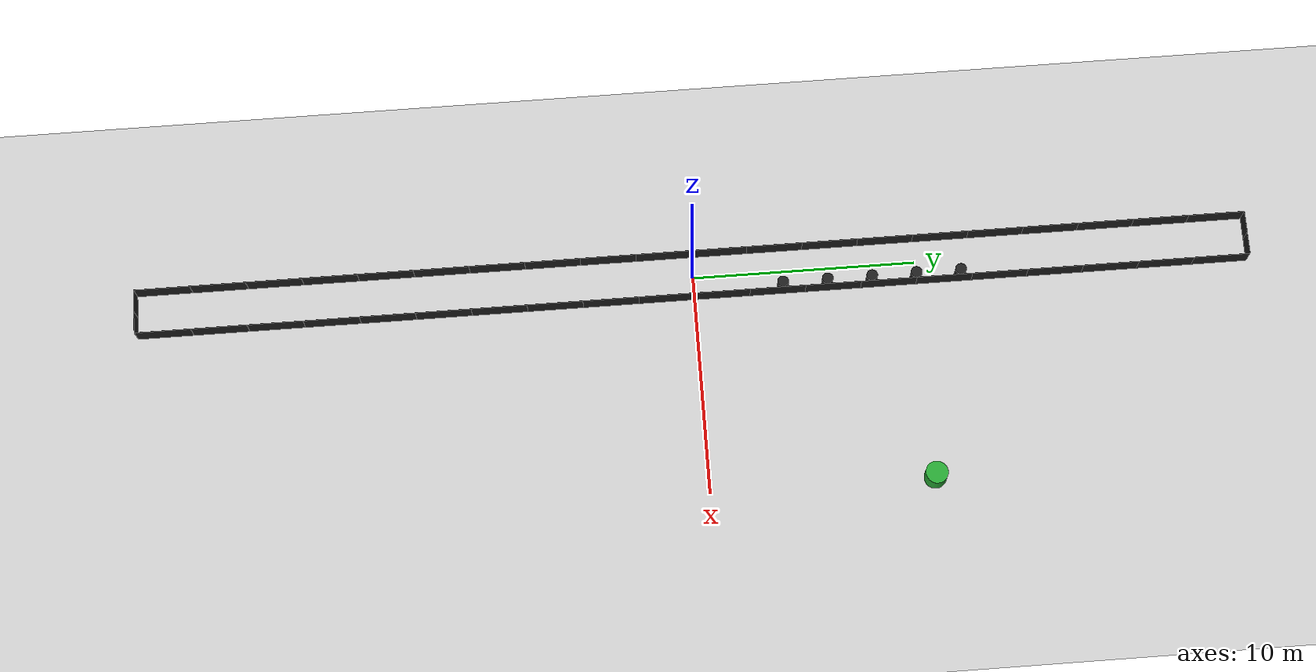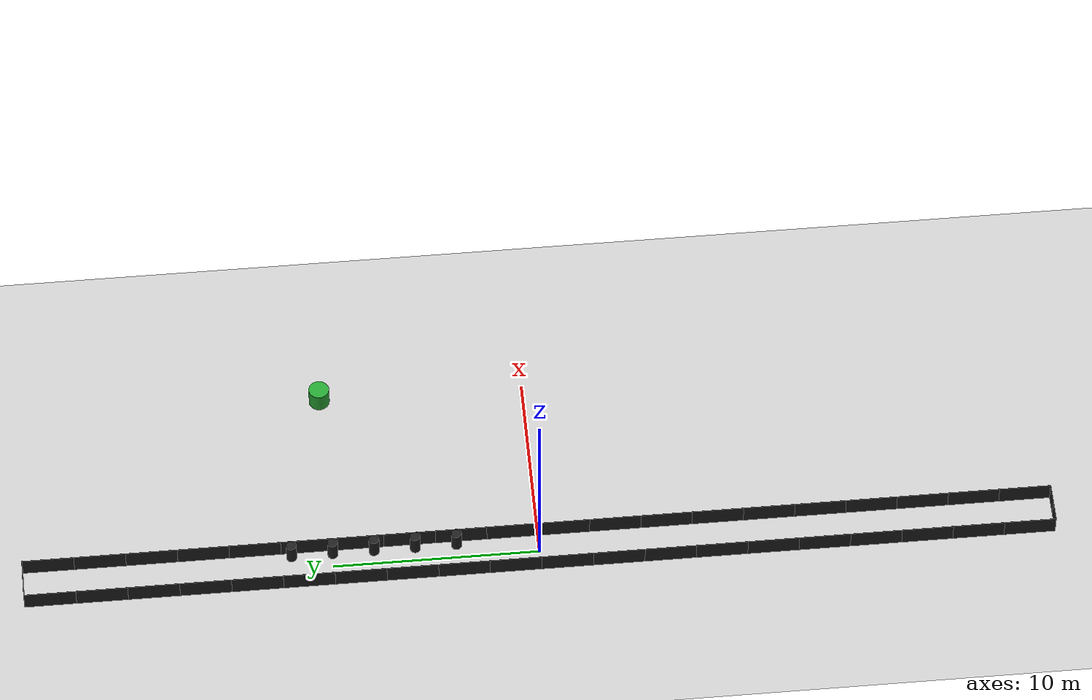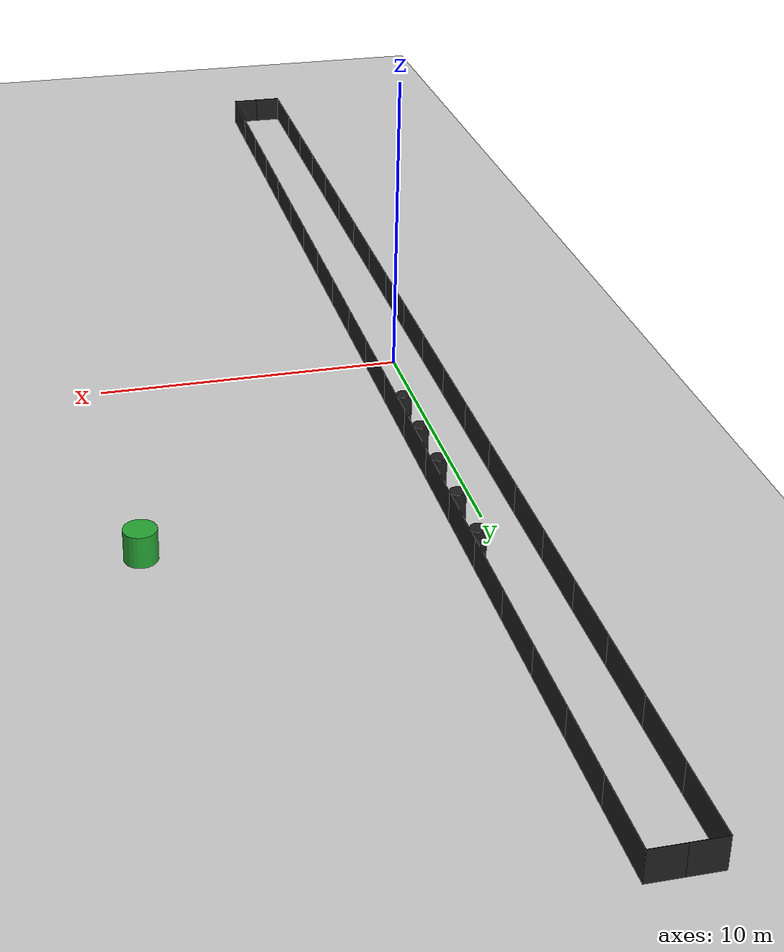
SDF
<?xml version="1.0" ?>
<sdf version="1.4">
  <world name="default">
    <!-- A global light source -->
    <include>
      <uri>model://sun</uri>
    </include>
    <!-- A ground plane -->
    <include>
      <uri>model://ground_plane</uri>
    </include>
    <!-- Own physics settings to speed up simulation -->
    <physics type='ode'>
      <max_step_size>0.01</max_step_size>
      <gravity>0 0 -9.8</gravity>
    </physics>

    <model name='obs11'>
			<pose>-1 1.25 0.5 0 -0 0</pose>
			<link name='link'>
				<inertial>
					<mass>1.0</mass>
				</inertial>
				<collision name='collision'>
					<geometry>
						<box>
							<size>0.01 2.5 1</size>
						</box>
					</geometry>
				</collision>
				<visual name='visual'>
					<geometry>
						<box>
							<size>0.01 2.5 1</size>
						</box>
					</geometry>
					<material>
						<script>
							<uri>file://media/materials/scripts/gazebo.material</uri>
							<name>Gazebo/Black</name>
						</script>
					</material>
				</visual>
				<velocity_decay>
					<linear>0</linear>
					<angular>0</angular>
				</velocity_decay>
				<self_collide>0</self_collide>
				<kinematic>0</kinematic>
				<gravity>1</gravity>
			</link>
			<static>1</static>
		</model>

    <model name='obs12'>
			<pose>1 1.25 0.5 0 -0 0</pose>
			<link name='link'>
				<inertial>
					<mass>1.0</mass>
				</inertial>
				<collision name='collision'>
					<geometry>
						<box>
							<size>0.01 2.5 1</size>
						</box>
					</geometry>
				</collision>
				<visual name='visual'>
					<geometry>
						<box>
							<size>0.01 2.5 1</size>
						</box>
					</geometry>
					<material>
						<script>
							<uri>file://media/materials/scripts/gazebo.material</uri>
							<name>Gazebo/Black</name>
						</script>
					</material>
				</visual>
				<velocity_decay>
					<linear>0</linear>
					<angular>0</angular>
				</velocity_decay>
				<self_collide>0</self_collide>
				<kinematic>0</kinematic>
				<gravity>1</gravity>
			</link>
			<static>1</static>
		</model>

    <model name='obs21'>
			<pose>-1 3.75 0.5 0 -0 0</pose>
			<link name='link'>
				<inertial>
					<mass>1.0</mass>
				</inertial>
				<collision name='collision'>
					<geometry>
						<box>
							<size>0.01 2.5 1</size>
						</box>
					</geometry>
				</collision>
				<visual name='visual'>
					<geometry>
						<box>
							<size>0.01 2.5 1</size>
						</box>
					</geometry>
					<material>
						<script>
							<uri>file://media/materials/scripts/gazebo.material</uri>
							<name>Gazebo/Black</name>
						</script>
					</material>
				</visual>
				<velocity_decay>
					<linear>0</linear>
					<angular>0</angular>
				</velocity_decay>
				<self_collide>0</self_collide>
				<kinematic>0</kinematic>
				<gravity>1</gravity>
			</link>
			<static>1</static>
		</model>

    <model name='obs22'>
			<pose>1 3.75 0.5 0 -0 0</pose>
			<link name='link'>
				<inertial>
					<mass>1.0</mass>
				</inertial>
				<collision name='collision'>
					<geometry>
						<box>
							<size>0.01 2.5 1</size>
						</box>
					</geometry>
				</collision>
				<visual name='visual'>
					<geometry>
						<box>
							<size>0.01 2.5 1</size>
						</box>
					</geometry>
					<material>
						<script>
							<uri>file://media/materials/scripts/gazebo.material</uri>
							<name>Gazebo/Black</name>
						</script>
					</material>
				</visual>
				<velocity_decay>
					<linear>0</linear>
					<angular>0</angular>
				</velocity_decay>
				<self_collide>0</self_collide>
				<kinematic>0</kinematic>
				<gravity>1</gravity>
			</link>
			<static>1</static>
		</model>

    <model name='obs31'>
			<pose>-1 6.25 0.5 0 -0 0</pose>
			<link name='link'>
				<inertial>
					<mass>1.0</mass>
				</inertial>
				<collision name='collision'>
					<geometry>
						<box>
							<size>0.01 2.5 1</size>
						</box>
					</geometry>
				</collision>
				<visual name='visual'>
					<geometry>
						<box>
							<size>0.01 2.5 1</size>
						</box>
					</geometry>
					<material>
						<script>
							<uri>file://media/materials/scripts/gazebo.material</uri>
							<name>Gazebo/Black</name>
						</script>
					</material>
				</visual>
				<velocity_decay>
					<linear>0</linear>
					<angular>0</angular>
				</velocity_decay>
				<self_collide>0</self_collide>
				<kinematic>0</kinematic>
				<gravity>1</gravity>
			</link>
			<static>1</static>
		</model>

    <model name='obs32'>
			<pose>1 6.25 0.5 0 -0 0</pose>
			<link name='link'>
				<inertial>
					<mass>1.0</mass>
				</inertial>
				<collision name='collision'>
					<geometry>
						<box>
							<size>0.01 2.5 1</size>
						</box>
					</geometry>
				</collision>
				<visual name='visual'>
					<geometry>
						<box>
							<size>0.01 2.5 1</size>
						</box>
					</geometry>
					<material>
						<script>
							<uri>file://media/materials/scripts/gazebo.material</uri>
							<name>Gazebo/Black</name>
						</script>
					</material>
				</visual>
				<velocity_decay>
					<linear>0</linear>
					<angular>0</angular>
				</velocity_decay>
				<self_collide>0</self_collide>
				<kinematic>0</kinematic>
				<gravity>1</gravity>
			</link>
			<static>1</static>
		</model>

    <model name='obs41'>
			<pose>-1 8.75 0.5 0 -0 0</pose>
			<link name='link'>
				<inertial>
					<mass>1.0</mass>
				</inertial>
				<collision name='collision'>
					<geometry>
						<box>
							<size>0.01 2.5 1</size>
						</box>
					</geometry>
				</collision>
				<visual name='visual'>
					<geometry>
						<box>
							<size>0.01 2.5 1</size>
						</box>
					</geometry>
					<material>
						<script>
							<uri>file://media/materials/scripts/gazebo.material</uri>
							<name>Gazebo/Black</name>
						</script>
					</material>
				</visual>
				<velocity_decay>
					<linear>0</linear>
					<angular>0</angular>
				</velocity_decay>
				<self_collide>0</self_collide>
				<kinematic>0</kinematic>
				<gravity>1</gravity>
			</link>
			<static>1</static>
		</model>

    <model name='obs42'>
			<pose>1 8.75 0.5 0 -0 0</pose>
			<link name='link'>
				<inertial>
					<mass>1.0</mass>
				</inertial>
				<collision name='collision'>
					<geometry>
						<box>
							<size>0.01 2.5 1</size>
						</box>
					</geometry>
				</collision>
				<visual name='visual'>
					<geometry>
						<box>
							<size>0.01 2.5 1</size>
						</box>
					</geometry>
					<material>
						<script>
							<uri>file://media/materials/scripts/gazebo.material</uri>
							<name>Gazebo/Black</name>
						</script>
					</material>
				</visual>
				<velocity_decay>
					<linear>0</linear>
					<angular>0</angular>
				</velocity_decay>
				<self_collide>0</self_collide>
				<kinematic>0</kinematic>
				<gravity>1</gravity>
			</link>
			<static>1</static>
		</model>

    <model name='obs51'>
			<pose>-1 11.25 0.5 0 -0 0</pose>
			<link name='link'>
				<inertial>
					<mass>1.0</mass>
				</inertial>
				<collision name='collision'>
					<geometry>
						<box>
							<size>0.01 2.5 1</size>
						</box>
					</geometry>
				</collision>
				<visual name='visual'>
					<geometry>
						<box>
							<size>0.01 2.5 1</size>
						</box>
					</geometry>
					<material>
						<script>
							<uri>file://media/materials/scripts/gazebo.material</uri>
							<name>Gazebo/Black</name>
						</script>
					</material>
				</visual>
				<velocity_decay>
					<linear>0</linear>
					<angular>0</angular>
				</velocity_decay>
				<self_collide>0</self_collide>
				<kinematic>0</kinematic>
				<gravity>1</gravity>
			</link>
			<static>1</static>
		</model>

    <model name='obs52'>
			<pose>1 11.25 0.5 0 -0 0</pose>
			<link name='link'>
				<inertial>
					<mass>1.0</mass>
				</inertial>
				<collision name='collision'>
					<geometry>
						<box>
							<size>0.01 2.5 1</size>
						</box>
					</geometry>
				</collision>
				<visual name='visual'>
					<geometry>
						<box>
							<size>0.01 2.5 1</size>
						</box>
					</geometry>
					<material>
						<script>
							<uri>file://media/materials/scripts/gazebo.material</uri>
							<name>Gazebo/Black</name>
						</script>
					</material>
				</visual>
				<velocity_decay>
					<linear>0</linear>
					<angular>0</angular>
				</velocity_decay>
				<self_collide>0</self_collide>
				<kinematic>0</kinematic>
				<gravity>1</gravity>
			</link>
			<static>1</static>
		</model>

    <model name='obs61'>
			<pose>-1 13.75 0.5 0 -0 0</pose>
			<link name='link'>
				<inertial>
					<mass>1.0</mass>
				</inertial>
				<collision name='collision'>
					<geometry>
						<box>
							<size>0.01 2.5 1</size>
						</box>
					</geometry>
				</collision>
				<visual name='visual'>
					<geometry>
						<box>
							<size>0.01 2.5 1</size>
						</box>
					</geometry>
					<material>
						<script>
							<uri>file://media/materials/scripts/gazebo.material</uri>
							<name>Gazebo/Black</name>
						</script>
					</material>
				</visual>
				<velocity_decay>
					<linear>0</linear>
					<angular>0</angular>
				</velocity_decay>
				<self_collide>0</self_collide>
				<kinematic>0</kinematic>
				<gravity>1</gravity>
			</link>
			<static>1</static>
		</model>

    <model name='obs62'>
			<pose>1 13.75 0.5 0 -0 0</pose>
			<link name='link'>
				<inertial>
					<mass>1.0</mass>
				</inertial>
				<collision name='collision'>
					<geometry>
						<box>
							<size>0.01 2.5 1</size>
						</box>
					</geometry>
				</collision>
				<visual name='visual'>
					<geometry>
						<box>
							<size>0.01 2.5 1</size>
						</box>
					</geometry>
					<material>
						<script>
							<uri>file://media/materials/scripts/gazebo.material</uri>
							<name>Gazebo/Black</name>
						</script>
					</material>
				</visual>
				<velocity_decay>
					<linear>0</linear>
					<angular>0</angular>
				</velocity_decay>
				<self_collide>0</self_collide>
				<kinematic>0</kinematic>
				<gravity>1</gravity>
			</link>
			<static>1</static>
		</model>

    <model name='obs71'>
			<pose>-1 16.25 0.5 0 -0 0</pose>
			<link name='link'>
				<inertial>
					<mass>1.0</mass>
				</inertial>
				<collision name='collision'>
					<geometry>
						<box>
							<size>0.01 2.5 1</size>
						</box>
					</geometry>
				</collision>
				<visual name='visual'>
					<geometry>
						<box>
							<size>0.01 2.5 1</size>
						</box>
					</geometry>
					<material>
						<script>
							<uri>file://media/materials/scripts/gazebo.material</uri>
							<name>Gazebo/Black</name>
						</script>
					</material>
				</visual>
				<velocity_decay>
					<linear>0</linear>
					<angular>0</angular>
				</velocity_decay>
				<self_collide>0</self_collide>
				<kinematic>0</kinematic>
				<gravity>1</gravity>
			</link>
			<static>1</static>
		</model>

    <model name='obs72'>
			<pose>1 16.25 0.5 0 -0 0</pose>
			<link name='link'>
				<inertial>
					<mass>1.0</mass>
				</inertial>
				<collision name='collision'>
					<geometry>
						<box>
							<size>0.01 2.5 1</size>
						</box>
					</geometry>
				</collision>
				<visual name='visual'>
					<geometry>
						<box>
							<size>0.01 2.5 1</size>
						</box>
					</geometry>
					<material>
						<script>
							<uri>file://media/materials/scripts/gazebo.material</uri>
							<name>Gazebo/Black</name>
						</script>
					</material>
				</visual>
				<velocity_decay>
					<linear>0</linear>
					<angular>0</angular>
				</velocity_decay>
				<self_collide>0</self_collide>
				<kinematic>0</kinematic>
				<gravity>1</gravity>
			</link>
			<static>1</static>
		</model>

    <model name='obs81'>
			<pose>-1 18.75 0.5 0 -0 0</pose>
			<link name='link'>
				<inertial>
					<mass>1.0</mass>
				</inertial>
				<collision name='collision'>
					<geometry>
						<box>
							<size>0.01 2.5 1</size>
						</box>
					</geometry>
				</collision>
				<visual name='visual'>
					<geometry>
						<box>
							<size>0.01 2.5 1</size>
						</box>
					</geometry>
					<material>
						<script>
							<uri>file://media/materials/scripts/gazebo.material</uri>
							<name>Gazebo/Black</name>
						</script>
					</material>
				</visual>
				<velocity_decay>
					<linear>0</linear>
					<angular>0</angular>
				</velocity_decay>
				<self_collide>0</self_collide>
				<kinematic>0</kinematic>
				<gravity>1</gravity>
			</link>
			<static>1</static>
		</model>

    <model name='obs82'>
			<pose>1 18.75 0.5 0 -0 0</pose>
			<link name='link'>
				<inertial>
					<mass>1.0</mass>
				</inertial>
				<collision name='collision'>
					<geometry>
						<box>
							<size>0.01 2.5 1</size>
						</box>
					</geometry>
				</collision>
				<visual name='visual'>
					<geometry>
						<box>
							<size>0.01 2.5 1</size>
						</box>
					</geometry>
					<material>
						<script>
							<uri>file://media/materials/scripts/gazebo.material</uri>
							<name>Gazebo/Black</name>
						</script>
					</material>
				</visual>
				<velocity_decay>
					<linear>0</linear>
					<angular>0</angular>
				</velocity_decay>
				<self_collide>0</self_collide>
				<kinematic>0</kinematic>
				<gravity>1</gravity>
			</link>
			<static>1</static>
		</model>

    <model name='obs91'>
			<pose>-1 21.25 0.5 0 -0 0</pose>
			<link name='link'>
				<inertial>
					<mass>1.0</mass>
				</inertial>
				<collision name='collision'>
					<geometry>
						<box>
							<size>0.01 2.5 1</size>
						</box>
					</geometry>
				</collision>
				<visual name='visual'>
					<geometry>
						<box>
							<size>0.01 2.5 1</size>
						</box>
					</geometry>
					<material>
						<script>
							<uri>file://media/materials/scripts/gazebo.material</uri>
							<name>Gazebo/Black</name>
						</script>
					</material>
				</visual>
				<velocity_decay>
					<linear>0</linear>
					<angular>0</angular>
				</velocity_decay>
				<self_collide>0</self_collide>
				<kinematic>0</kinematic>
				<gravity>1</gravity>
			</link>
			<static>1</static>
		</model>

    <model name='obs92'>
			<pose>1 21.25 0.5 0 -0 0</pose>
			<link name='link'>
				<inertial>
					<mass>1.0</mass>
				</inertial>
				<collision name='collision'>
					<geometry>
						<box>
							<size>0.01 2.5 1</size>
						</box>
					</geometry>
				</collision>
				<visual name='visual'>
					<geometry>
						<box>
							<size>0.01 2.5 1</size>
						</box>
					</geometry>
					<material>
						<script>
							<uri>file://media/materials/scripts/gazebo.material</uri>
							<name>Gazebo/Black</name>
						</script>
					</material>
				</visual>
				<velocity_decay>
					<linear>0</linear>
					<angular>0</angular>
				</velocity_decay>
				<self_collide>0</self_collide>
				<kinematic>0</kinematic>
				<gravity>1</gravity>
			</link>
			<static>1</static>
		</model>

    <model name='obs101'>
			<pose>-1 23.75 0.5 0 -0 0</pose>
			<link name='link'>
				<inertial>
					<mass>1.0</mass>
				</inertial>
				<collision name='collision'>
					<geometry>
						<box>
							<size>0.01 2.5 1</size>
						</box>
					</geometry>
				</collision>
				<visual name='visual'>
					<geometry>
						<box>
							<size>0.01 2.5 1</size>
						</box>
					</geometry>
					<material>
						<script>
							<uri>file://media/materials/scripts/gazebo.material</uri>
							<name>Gazebo/Black</name>
						</script>
					</material>
				</visual>
				<velocity_decay>
					<linear>0</linear>
					<angular>0</angular>
				</velocity_decay>
				<self_collide>0</self_collide>
				<kinematic>0</kinematic>
				<gravity>1</gravity>
			</link>
			<static>1</static>
		</model>

    <model name='obs102'>
			<pose>1 23.75 0.5 0 -0 0</pose>
			<link name='link'>
				<inertial>
					<mass>1.0</mass>
				</inertial>
				<collision name='collision'>
					<geometry>
						<box>
							<size>0.01 2.5 1</size>
						</box>
					</geometry>
				</collision>
				<visual name='visual'>
					<geometry>
						<box>
							<size>0.01 2.5 1</size>
						</box>
					</geometry>
					<material>
						<script>
							<uri>file://media/materials/scripts/gazebo.material</uri>
							<name>Gazebo/Black</name>
						</script>
					</material>
				</visual>
				<velocity_decay>
					<linear>0</linear>
					<angular>0</angular>
				</velocity_decay>
				<self_collide>0</self_collide>
				<kinematic>0</kinematic>
				<gravity>1</gravity>
			</link>
			<static>1</static>
		</model>

    <model name='obs111'>
			<pose>-1 -1.25 0.5 0 -0 0</pose>
			<link name='link'>
				<inertial>
					<mass>1.0</mass>
				</inertial>
				<collision name='collision'>
					<geometry>
						<box>
							<size>0.01 2.5 1</size>
						</box>
					</geometry>
				</collision>
				<visual name='visual'>
					<geometry>
						<box>
							<size>0.01 2.5 1</size>
						</box>
					</geometry>
					<material>
						<script>
							<uri>file://media/materials/scripts/gazebo.material</uri>
							<name>Gazebo/Black</name>
						</script>
					</material>
				</visual>
				<velocity_decay>
					<linear>0</linear>
					<angular>0</angular>
				</velocity_decay>
				<self_collide>0</self_collide>
				<kinematic>0</kinematic>
				<gravity>1</gravity>
			</link>
			<static>1</static>
		</model>

    <model name='obs112'>
			<pose>1 -1.25 0.5 0 -0 0</pose>
			<link name='link'>
				<inertial>
					<mass>1.0</mass>
				</inertial>
				<collision name='collision'>
					<geometry>
						<box>
							<size>0.01 2.5 1</size>
						</box>
					</geometry>
				</collision>
				<visual name='visual'>
					<geometry>
						<box>
							<size>0.01 2.5 1</size>
						</box>
					</geometry>
					<material>
						<script>
							<uri>file://media/materials/scripts/gazebo.material</uri>
							<name>Gazebo/Black</name>
						</script>
					</material>
				</visual>
				<velocity_decay>
					<linear>0</linear>
					<angular>0</angular>
				</velocity_decay>
				<self_collide>0</self_collide>
				<kinematic>0</kinematic>
				<gravity>1</gravity>
			</link>
			<static>1</static>
		</model>

    <model name='obs121'>
			<pose>-1 -3.75 0.5 0 -0 0</pose>
			<link name='link'>
				<inertial>
					<mass>1.0</mass>
				</inertial>
				<collision name='collision'>
					<geometry>
						<box>
							<size>0.01 2.5 1</size>
						</box>
					</geometry>
				</collision>
				<visual name='visual'>
					<geometry>
						<box>
							<size>0.01 2.5 1</size>
						</box>
					</geometry>
					<material>
						<script>
							<uri>file://media/materials/scripts/gazebo.material</uri>
							<name>Gazebo/Black</name>
						</script>
					</material>
				</visual>
				<velocity_decay>
					<linear>0</linear>
					<angular>0</angular>
				</velocity_decay>
				<self_collide>0</self_collide>
				<kinematic>0</kinematic>
				<gravity>1</gravity>
			</link>
			<static>1</static>
		</model>

    <model name='obs122'>
			<pose>1 -3.75 0.5 0 -0 0</pose>
			<link name='link'>
				<inertial>
					<mass>1.0</mass>
				</inertial>
				<collision name='collision'>
					<geometry>
						<box>
							<size>0.01 2.5 1</size>
						</box>
					</geometry>
				</collision>
				<visual name='visual'>
					<geometry>
						<box>
							<size>0.01 2.5 1</size>
						</box>
					</geometry>
					<material>
						<script>
							<uri>file://media/materials/scripts/gazebo.material</uri>
							<name>Gazebo/Black</name>
						</script>
					</material>
				</visual>
				<velocity_decay>
					<linear>0</linear>
					<angular>0</angular>
				</velocity_decay>
				<self_collide>0</self_collide>
				<kinematic>0</kinematic>
				<gravity>1</gravity>
			</link>
			<static>1</static>
		</model>

    <model name='obs131'>
			<pose>-1 -6.25 0.5 0 -0 0</pose>
			<link name='link'>
				<inertial>
					<mass>1.0</mass>
				</inertial>
				<collision name='collision'>
					<geometry>
						<box>
							<size>0.01 2.5 1</size>
						</box>
					</geometry>
				</collision>
				<visual name='visual'>
					<geometry>
						<box>
							<size>0.01 2.5 1</size>
						</box>
					</geometry>
					<material>
						<script>
							<uri>file://media/materials/scripts/gazebo.material</uri>
							<name>Gazebo/Black</name>
						</script>
					</material>
				</visual>
				<velocity_decay>
					<linear>0</linear>
					<angular>0</angular>
				</velocity_decay>
				<self_collide>0</self_collide>
				<kinematic>0</kinematic>
				<gravity>1</gravity>
			</link>
			<static>1</static>
		</model>

    <model name='obs132'>
			<pose>1 -6.25 0.5 0 -0 0</pose>
			<link name='link'>
				<inertial>
					<mass>1.0</mass>
				</inertial>
				<collision name='collision'>
					<geometry>
						<box>
							<size>0.01 2.5 1</size>
						</box>
					</geometry>
				</collision>
				<visual name='visual'>
					<geometry>
						<box>
							<size>0.01 2.5 1</size>
						</box>
					</geometry>
					<material>
						<script>
							<uri>file://media/materials/scripts/gazebo.material</uri>
							<name>Gazebo/Black</name>
						</script>
					</material>
				</visual>
				<velocity_decay>
					<linear>0</linear>
					<angular>0</angular>
				</velocity_decay>
				<self_collide>0</self_collide>
				<kinematic>0</kinematic>
				<gravity>1</gravity>
			</link>
			<static>1</static>
		</model>

    <model name='obs141'>
			<pose>-1 -8.75 0.5 0 -0 0</pose>
			<link name='link'>
				<inertial>
					<mass>1.0</mass>
				</inertial>
				<collision name='collision'>
					<geometry>
						<box>
							<size>0.01 2.5 1</size>
						</box>
					</geometry>
				</collision>
				<visual name='visual'>
					<geometry>
						<box>
							<size>0.01 2.5 1</size>
						</box>
					</geometry>
					<material>
						<script>
							<uri>file://media/materials/scripts/gazebo.material</uri>
							<name>Gazebo/Black</name>
						</script>
					</material>
				</visual>
				<velocity_decay>
					<linear>0</linear>
					<angular>0</angular>
				</velocity_decay>
				<self_collide>0</self_collide>
				<kinematic>0</kinematic>
				<gravity>1</gravity>
			</link>
			<static>1</static>
		</model>

    <model name='obs142'>
			<pose>1 -8.75 0.5 0 -0 0</pose>
			<link name='link'>
				<inertial>
					<mass>1.0</mass>
				</inertial>
				<collision name='collision'>
					<geometry>
						<box>
							<size>0.01 2.5 1</size>
						</box>
					</geometry>
				</collision>
				<visual name='visual'>
					<geometry>
						<box>
							<size>0.01 2.5 1</size>
						</box>
					</geometry>
					<material>
						<script>
							<uri>file://media/materials/scripts/gazebo.material</uri>
							<name>Gazebo/Black</name>
						</script>
					</material>
				</visual>
				<velocity_decay>
					<linear>0</linear>
					<angular>0</angular>
				</velocity_decay>
				<self_collide>0</self_collide>
				<kinematic>0</kinematic>
				<gravity>1</gravity>
			</link>
			<static>1</static>
		</model>

    <model name='obs151'>
			<pose>-1 -11.25 0.5 0 -0 0</pose>
			<link name='link'>
				<inertial>
					<mass>1.0</mass>
				</inertial>
				<collision name='collision'>
					<geometry>
						<box>
							<size>0.01 2.5 1</size>
						</box>
					</geometry>
				</collision>
				<visual name='visual'>
					<geometry>
						<box>
							<size>0.01 2.5 1</size>
						</box>
					</geometry>
					<material>
						<script>
							<uri>file://media/materials/scripts/gazebo.material</uri>
							<name>Gazebo/Black</name>
						</script>
					</material>
				</visual>
				<velocity_decay>
					<linear>0</linear>
					<angular>0</angular>
				</velocity_decay>
				<self_collide>0</self_collide>
				<kinematic>0</kinematic>
				<gravity>1</gravity>
			</link>
			<static>1</static>
		</model>

    <model name='obs152'>
			<pose>1 -11.25 0.5 0 -0 0</pose>
			<link name='link'>
				<inertial>
					<mass>1.0</mass>
				</inertial>
				<collision name='collision'>
					<geometry>
						<box>
							<size>0.01 2.5 1</size>
						</box>
					</geometry>
				</collision>
				<visual name='visual'>
					<geometry>
						<box>
							<size>0.01 2.5 1</size>
						</box>
					</geometry>
					<material>
						<script>
							<uri>file://media/materials/scripts/gazebo.material</uri>
							<name>Gazebo/Black</name>
						</script>
					</material>
				</visual>
				<velocity_decay>
					<linear>0</linear>
					<angular>0</angular>
				</velocity_decay>
				<self_collide>0</self_collide>
				<kinematic>0</kinematic>
				<gravity>1</gravity>
			</link>
			<static>1</static>
		</model>

    <model name='obs161'>
			<pose>-1 -13.75 0.5 0 -0 0</pose>
			<link name='link'>
				<inertial>
					<mass>1.0</mass>
				</inertial>
				<collision name='collision'>
					<geometry>
						<box>
							<size>0.01 2.5 1</size>
						</box>
					</geometry>
				</collision>
				<visual name='visual'>
					<geometry>
						<box>
							<size>0.01 2.5 1</size>
						</box>
					</geometry>
					<material>
						<script>
							<uri>file://media/materials/scripts/gazebo.material</uri>
							<name>Gazebo/Black</name>
						</script>
					</material>
				</visual>
				<velocity_decay>
					<linear>0</linear>
					<angular>0</angular>
				</velocity_decay>
				<self_collide>0</self_collide>
				<kinematic>0</kinematic>
				<gravity>1</gravity>
			</link>
			<static>1</static>
		</model>

    <model name='obs162'>
			<pose>1 -13.75 0.5 0 -0 0</pose>
			<link name='link'>
				<inertial>
					<mass>1.0</mass>
				</inertial>
				<collision name='collision'>
					<geometry>
						<box>
							<size>0.01 2.5 1</size>
						</box>
					</geometry>
				</collision>
				<visual name='visual'>
					<geometry>
						<box>
							<size>0.01 2.5 1</size>
						</box>
					</geometry>
					<material>
						<script>
							<uri>file://media/materials/scripts/gazebo.material</uri>
							<name>Gazebo/Black</name>
						</script>
					</material>
				</visual>
				<velocity_decay>
					<linear>0</linear>
					<angular>0</angular>
				</velocity_decay>
				<self_collide>0</self_collide>
				<kinematic>0</kinematic>
				<gravity>1</gravity>
			</link>
			<static>1</static>
		</model>

    <model name='obs171'>
			<pose>-1 -16.25 0.5 0 -0 0</pose>
			<link name='link'>
				<inertial>
					<mass>1.0</mass>
				</inertial>
				<collision name='collision'>
					<geometry>
						<box>
							<size>0.01 2.5 1</size>
						</box>
					</geometry>
				</collision>
				<visual name='visual'>
					<geometry>
						<box>
							<size>0.01 2.5 1</size>
						</box>
					</geometry>
					<material>
						<script>
							<uri>file://media/materials/scripts/gazebo.material</uri>
							<name>Gazebo/Black</name>
						</script>
					</material>
				</visual>
				<velocity_decay>
					<linear>0</linear>
					<angular>0</angular>
				</velocity_decay>
				<self_collide>0</self_collide>
				<kinematic>0</kinematic>
				<gravity>1</gravity>
			</link>
			<static>1</static>
		</model>

    <model name='obs172'>
			<pose>1 -16.25 0.5 0 -0 0</pose>
			<link name='link'>
				<inertial>
					<mass>1.0</mass>
				</inertial>
				<collision name='collision'>
					<geometry>
						<box>
							<size>0.01 2.5 1</size>
						</box>
					</geometry>
				</collision>
				<visual name='visual'>
					<geometry>
						<box>
							<size>0.01 2.5 1</size>
						</box>
					</geometry>
					<material>
						<script>
							<uri>file://media/materials/scripts/gazebo.material</uri>
							<name>Gazebo/Black</name>
						</script>
					</material>
				</visual>
				<velocity_decay>
					<linear>0</linear>
					<angular>0</angular>
				</velocity_decay>
				<self_collide>0</self_collide>
				<kinematic>0</kinematic>
				<gravity>1</gravity>
			</link>
			<static>1</static>
		</model>

    <model name='obs181'>
			<pose>-1 -18.75 0.5 0 -0 0</pose>
			<link name='link'>
				<inertial>
					<mass>1.0</mass>
				</inertial>
				<collision name='collision'>
					<geometry>
						<box>
							<size>0.01 2.5 1</size>
						</box>
					</geometry>
				</collision>
				<visual name='visual'>
					<geometry>
						<box>
							<size>0.01 2.5 1</size>
						</box>
					</geometry>
					<material>
						<script>
							<uri>file://media/materials/scripts/gazebo.material</uri>
							<name>Gazebo/Black</name>
						</script>
					</material>
				</visual>
				<velocity_decay>
					<linear>0</linear>
					<angular>0</angular>
				</velocity_decay>
				<self_collide>0</self_collide>
				<kinematic>0</kinematic>
				<gravity>1</gravity>
			</link>
			<static>1</static>
		</model>

    <model name='obs182'>
			<pose>1 -18.75 0.5 0 -0 0</pose>
			<link name='link'>
				<inertial>
					<mass>1.0</mass>
				</inertial>
				<collision name='collision'>
					<geometry>
						<box>
							<size>0.01 2.5 1</size>
						</box>
					</geometry>
				</collision>
				<visual name='visual'>
					<geometry>
						<box>
							<size>0.01 2.5 1</size>
						</box>
					</geometry>
					<material>
						<script>
							<uri>file://media/materials/scripts/gazebo.material</uri>
							<name>Gazebo/Black</name>
						</script>
					</material>
				</visual>
				<velocity_decay>
					<linear>0</linear>
					<angular>0</angular>
				</velocity_decay>
				<self_collide>0</self_collide>
				<kinematic>0</kinematic>
				<gravity>1</gravity>
			</link>
			<static>1</static>
		</model>

    <model name='obs191'>
			<pose>-1 -21.25 0.5 0 -0 0</pose>
			<link name='link'>
				<inertial>
					<mass>1.0</mass>
				</inertial>
				<collision name='collision'>
					<geometry>
						<box>
							<size>0.01 2.5 1</size>
						</box>
					</geometry>
				</collision>
				<visual name='visual'>
					<geometry>
						<box>
							<size>0.01 2.5 1</size>
						</box>
					</geometry>
					<material>
						<script>
							<uri>file://media/materials/scripts/gazebo.material</uri>
							<name>Gazebo/Black</name>
						</script>
					</material>
				</visual>
				<velocity_decay>
					<linear>0</linear>
					<angular>0</angular>
				</velocity_decay>
				<self_collide>0</self_collide>
				<kinematic>0</kinematic>
				<gravity>1</gravity>
			</link>
			<static>1</static>
		</model>

    <model name='obs192'>
			<pose>1 -21.25 0.5 0 -0 0</pose>
			<link name='link'>
				<inertial>
					<mass>1.0</mass>
				</inertial>
				<collision name='collision'>
					<geometry>
						<box>
							<size>0.01 2.5 1</size>
						</box>
					</geometry>
				</collision>
				<visual name='visual'>
					<geometry>
						<box>
							<size>0.01 2.5 1</size>
						</box>
					</geometry>
					<material>
						<script>
							<uri>file://media/materials/scripts/gazebo.material</uri>
							<name>Gazebo/Black</name>
						</script>
					</material>
				</visual>
				<velocity_decay>
					<linear>0</linear>
					<angular>0</angular>
				</velocity_decay>
				<self_collide>0</self_collide>
				<kinematic>0</kinematic>
				<gravity>1</gravity>
			</link>
			<static>1</static>
		</model>

    <model name='obs201'>
			<pose>-1 -23.75 0.5 0 -0 0</pose>
			<link name='link'>
				<inertial>
					<mass>1.0</mass>
				</inertial>
				<collision name='collision'>
					<geometry>
						<box>
							<size>0.01 2.5 1</size>
						</box>
					</geometry>
				</collision>
				<visual name='visual'>
					<geometry>
						<box>
							<size>0.01 2.5 1</size>
						</box>
					</geometry>
					<material>
						<script>
							<uri>file://media/materials/scripts/gazebo.material</uri>
							<name>Gazebo/Black</name>
						</script>
					</material>
				</visual>
				<velocity_decay>
					<linear>0</linear>
					<angular>0</angular>
				</velocity_decay>
				<self_collide>0</self_collide>
				<kinematic>0</kinematic>
				<gravity>1</gravity>
			</link>
			<static>1</static>
		</model>

    <model name='obs202'>
			<pose>1 -23.75 0.5 0 -0 0</pose>
			<link name='link'>
				<inertial>
					<mass>1.0</mass>
				</inertial>
				<collision name='collision'>
					<geometry>
						<box>
							<size>0.01 2.5 1</size>
						</box>
					</geometry>
				</collision>
				<visual name='visual'>
					<geometry>
						<box>
							<size>0.01 2.5 1</size>
						</box>
					</geometry>
					<material>
						<script>
							<uri>file://media/materials/scripts/gazebo.material</uri>
							<name>Gazebo/Black</name>
						</script>
					</material>
				</visual>
				<velocity_decay>
					<linear>0</linear>
					<angular>0</angular>
				</velocity_decay>
				<self_collide>0</self_collide>
				<kinematic>0</kinematic>
				<gravity>1</gravity>
			</link>
			<static>1</static>
			</model>
    <model name='obs211'>
			<pose>0.5 -25.0 0.5 0 -0 0</pose>
			<link name='link'>
				<inertial>
					<mass>1.0</mass>
				</inertial>
				<collision name='collision'>
					<geometry>
						<box>
							<size>1.0 0.01 1</size>
						</box>
					</geometry>
				</collision>
				<visual name='visual'>
					<geometry>
						<box>
							<size>1.0 0.01 1</size>
						</box>
					</geometry>
					<material>
						<script>
							<uri>file://media/materials/scripts/gazebo.material</uri>
							<name>Gazebo/Black</name>
						</script>
					</material>
				</visual>
				<velocity_decay>
					<linear>0</linear>
					<angular>0</angular>
				</velocity_decay>
				<self_collide>0</self_collide>
				<kinematic>0</kinematic>
				<gravity>1</gravity>
			</link>
			<static>1</static>
		</model>
   <model name='obs221'>
			<pose>-0.5 -25.0 0.5 0 -0 0</pose>
			<link name='link'>
				<inertial>
					<mass>1.0</mass>
				</inertial>
				<collision name='collision'>
					<geometry>
						<box>
							<size>1.0 0.01 1</size>
						</box>
					</geometry>
				</collision>
				<visual name='visual'>
					<geometry>
						<box>
							<size>1.0 0.01 1</size>
						</box>
					</geometry>
					<material>
						<script>
							<uri>file://media/materials/scripts/gazebo.material</uri>
							<name>Gazebo/Black</name>
						</script>
					</material>
				</visual>
				<velocity_decay>
					<linear>0</linear>
					<angular>0</angular>
				</velocity_decay>
				<self_collide>0</self_collide>
				<kinematic>0</kinematic>
				<gravity>1</gravity>
			</link>
			<static>1</static>
		</model>
	   <model name='obs231'>
			<pose>-0.5 25.0 0.5 0 -0 0</pose>
			<link name='link'>
				<inertial>
					<mass>1.0</mass>
				</inertial>
				<collision name='collision'>
					<geometry>
						<box>
							<size>1.0 0.01 1</size>
						</box>
					</geometry>
				</collision>
				<visual name='visual'>
					<geometry>
						<box>
							<size>1.0 0.01 1</size>
						</box>
					</geometry>
					<material>
						<script>
							<uri>file://media/materials/scripts/gazebo.material</uri>
							<name>Gazebo/Black</name>
						</script>
					</material>
				</visual>
				<velocity_decay>
					<linear>0</linear>
					<angular>0</angular>
				</velocity_decay>
				<self_collide>0</self_collide>
				<kinematic>0</kinematic>
				<gravity>1</gravity>
			</link>
			<static>1</static>
		</model>

		<model name='obs241'>
			<pose>0.5 25.0 0.5 0 -0 0</pose>
			<link name='link'>
				<inertial>
					<mass>1.0</mass>
				</inertial>
				<collision name='collision'>
					<geometry>
						<box>
							<size>1.0 0.01 1</size>
						</box>
					</geometry>
				</collision>
				<visual name='visual'>
					<geometry>
						<box>
							<size>1.0 0.01 1</size>
						</box>
					</geometry>
					<material>
						<script>
							<uri>file://media/materials/scripts/gazebo.material</uri>
							<name>Gazebo/Black</name>
						</script>
					</material>
				</visual>
				<velocity_decay>
					<linear>0</linear>
					<angular>0</angular>
				</velocity_decay>
				<self_collide>0</self_collide>
				<kinematic>0</kinematic>
				<gravity>1</gravity>
			</link>
			<static>1</static>
		</model>
	<model name='obs1'>
			<pose>0.75 4 0.5 0 -0 0</pose>
			<link name='link'>
				<inertial>
					<mass>1.0</mass>
				</inertial>
				<collision name='collision'>
					<geometry>
						<cylinder>
								<radius>0.25</radius>
								<length>1.0</length>
						</cylinder>
					</geometry>
				</collision>
				<visual name='visual'>
					<geometry>
						<cylinder>
								<radius>0.25</radius>
								<length>1.0</length>
						</cylinder>
					</geometry>
					<material>
						<script>
							<uri>file://media/materials/scripts/gazebo.material</uri>
							<name>Gazebo/Black</name>
						</script>
					</material>
				</visual>
				<velocity_decay>
					<linear>0</linear>
					<angular>0</angular>
				</velocity_decay>
				<self_collide>0</self_collide>
				<kinematic>0</kinematic>
				<gravity>1</gravity>
			</link>
			<static>0</static>
		</model>

    <model name='obs2'>
			<pose>0.75 6 0.5 0 -0 0</pose>
			<link name='link'>
				<inertial>
					<mass>1.0</mass>
				</inertial>
				<collision name='collision'>
					<geometry>
						<cylinder>
								<radius>0.25</radius>
								<length>1.0</length>
						</cylinder>
					</geometry>
				</collision>
				<visual name='visual'>
					<geometry>
						<cylinder>
								<radius>0.25</radius>
								<length>1.0</length>
						</cylinder>
					</geometry>
					<material>
						<script>
							<uri>file://media/materials/scripts/gazebo.material</uri>
							<name>Gazebo/Black</name>
						</script>
					</material>
				</visual>
				<velocity_decay>
					<linear>0</linear>
					<angular>0</angular>
				</velocity_decay>
				<self_collide>0</self_collide>
				<kinematic>0</kinematic>
				<gravity>1</gravity>
			</link>
			<static>0</static>
		</model>

    <model name='obs3'>
			<pose>0.75 8 0.5 0 -0 0</pose>
			<link name='link'>
				<inertial>
					<mass>1.0</mass>
				</inertial>
				<collision name='collision'>
					<geometry>
						<cylinder>
								<radius>0.25</radius>
								<length>1.0</length>
						</cylinder>
					</geometry>
				</collision>
				<visual name='visual'>
					<geometry>
						<cylinder>
								<radius>0.25</radius>
								<length>1.0</length>
						</cylinder>
					</geometry>
					<material>
						<script>
							<uri>file://media/materials/scripts/gazebo.material</uri>
							<name>Gazebo/Black</name>
						</script>
					</material>
				</visual>
				<velocity_decay>
					<linear>0</linear>
					<angular>0</angular>
				</velocity_decay>
				<self_collide>0</self_collide>
				<kinematic>0</kinematic>
				<gravity>1</gravity>
			</link>
			<static>0</static>
		</model>
    <model name='obs4'>
			<pose>0.75 10 0.5 0 -0 0</pose>
			<link name='link'>
				<inertial>
					<mass>1.0</mass>
				</inertial>
				<collision name='collision'>
					<geometry>
						<cylinder>
								<radius>0.25</radius>
								<length>1.0</length>
						</cylinder>
					</geometry>
				</collision>
				<visual name='visual'>
					<geometry>
						<cylinder>
								<radius>0.25</radius>
								<length>1.0</length>
						</cylinder>
					</geometry>
					<material>
						<script>
							<uri>file://media/materials/scripts/gazebo.material</uri>
							<name>Gazebo/Black</name>
						</script>
					</material>
				</visual>
				<velocity_decay>
					<linear>0</linear>
					<angular>0</angular>
				</velocity_decay>
				<self_collide>0</self_collide>
				<kinematic>0</kinematic>
				<gravity>1</gravity>
			</link>
			<static>0</static>
		</model>

    <model name='obs5'>
			<pose>0.75 12 0.5 0 -0 0</pose>
			<link name='link'>
				<inertial>
					<mass>1.0</mass>
				</inertial>
				<collision name='collision'>
					<geometry>
						<cylinder>
								<radius>0.25</radius>
								<length>1.0</length>
						</cylinder>
					</geometry>
				</collision>
				<visual name='visual'>
					<geometry>
						<cylinder>
								<radius>0.25</radius>
								<length>1.0</length>
						</cylinder>
					</geometry>
					<material>
						<script>
							<uri>file://media/materials/scripts/gazebo.material</uri>
							<name>Gazebo/Black</name>
						</script>
					</material>
				</visual>
				<velocity_decay>
					<linear>0</linear>
					<angular>0</angular>
				</velocity_decay>
				<self_collide>0</self_collide>
				<kinematic>0</kinematic>
				<gravity>1</gravity>
			</link>
			<static>0</static>
		</model>

		<model name='point_goal'>
			<pose>10 10 0.5 0 0 0</pose>
			<link name='link'>
				<inertial>
					<mass>1</mass>
				</inertial>
				<visual name='visual'>
					<geometry>
						<cylinder>
								<radius>0.5</radius>
								<length>1.0</length>
						</cylinder>
					</geometry>
					<material>
						<script>
							<uri>file://media/materials/scripts/gazebo.material</uri>
							<name>Gazebo/Green</name>
						</script>
					</material>
				</visual>
				<velocity_decay>
					<linear>0</linear>
					<angular>0</angular>
				</velocity_decay>
				<self_collide>0</self_collide>
				<kinematic>0</kinematic>
				<gravity>0</gravity>
			</link>
		</model>
  </world>
</sdf>
